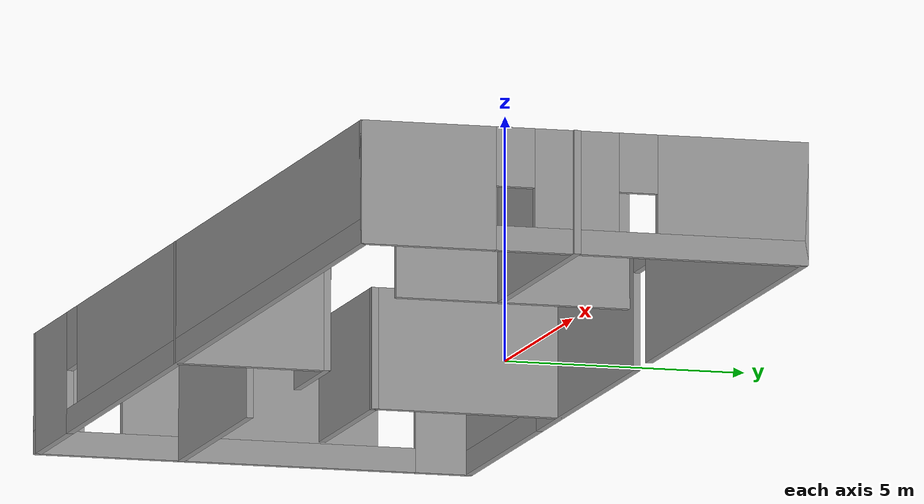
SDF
<?xml version='1.0'?>
<sdf version='1.7'>
  <model name='home_environment'>
    <pose>-438.845 135.129 0 0 -0 0</pose>
    <link name='Wall_0'>
      <collision name='Wall_0_Collision'>
        <geometry>
          <box>
            <size>15.5 0.15 2.5</size>
          </box>
        </geometry>
        <pose>0 0 1.25 0 -0 0</pose>
      </collision>
      <visual name='Wall_0_Visual'>
        <pose>0 0 1.25 0 -0 0</pose>
        <geometry>
          <box>
            <size>15.5 0.15 2.5</size>
          </box>
        </geometry>
        <material>
          <script>
            <uri>file://media/materials/scripts/gazebo.material</uri>
            <name>Gazebo/Grey</name>
          </script>
          <ambient>1 1 1 1</ambient>
        </material>
        <meta>
          <layer>0</layer>
        </meta>
      </visual>
      <pose>-443.272 139.386 0 0 -0 -2.87979</pose>
    </link>
    <link name='Wall_1'>
      <collision name='Wall_1_Collision'>
        <geometry>
          <box>
            <size>68.25 0.15 2.5</size>
          </box>
        </geometry>
        <pose>0 0 1.25 0 -0 0</pose>
      </collision>
      <visual name='Wall_1_Visual'>
        <pose>0 0 1.25 0 -0 0</pose>
        <geometry>
          <box>
            <size>68.25 0.15 2.5</size>
          </box>
        </geometry>
        <material>
          <script>
            <uri>file://media/materials/scripts/gazebo.material</uri>
            <name>Gazebo/Grey</name>
          </script>
          <ambient>1 1 1 1</ambient>
        </material>
        <meta>
          <layer>0</layer>
        </meta>
      </visual>
      <pose>-441.873 104.51 0 0 -0 -1.309</pose>
    </link>
    <link name='Wall_10'>
      <pose>438.352 -132.285 0 0 -0 3.14159</pose>
      <visual name='Wall_10_Visual_0'>
        <pose>-6.73509 0 1.25 0 -0 0</pose>
        <geometry>
          <box>
            <size>11.2798 0.15 2.5</size>
          </box>
        </geometry>
        <material>
          <script>
            <uri>file://media/materials/scripts/gazebo.material</uri>
            <name>Gazebo/Grey</name>
          </script>
          <ambient>1 1 1 1</ambient>
        </material>
        <meta>
          <layer>0</layer>
        </meta>
      </visual>
      <collision name='Wall_10_Collision_0'>
        <geometry>
          <box>
            <size>11.2798 0.15 2.5</size>
          </box>
        </geometry>
        <pose>-6.73509 0 1.25 0 -0 0</pose>
      </collision>
      <visual name='Wall_10_Visual_1'>
        <pose>3.38738 0 1.25 0 -0 0</pose>
        <geometry>
          <box>
            <size>7.16512 0.15 2.5</size>
          </box>
        </geometry>
        <material>
          <script>
            <uri>file://media/materials/scripts/gazebo.material</uri>
            <name>Gazebo/Grey</name>
          </script>
          <ambient>1 1 1 1</ambient>
        </material>
        <meta>
          <layer>0</layer>
        </meta>
      </visual>
      <collision name='Wall_10_Collision_1'>
        <geometry>
          <box>
            <size>7.16512 0.15 2.5</size>
          </box>
        </geometry>
        <pose>3.38738 0 1.25 0 -0 0</pose>
      </collision>
      <visual name='Wall_10_Visual_2'>
        <pose>9.67247 0 0.25 0 -0 0</pose>
        <geometry>
          <box>
            <size>5.40506 0.15 0.5</size>
          </box>
        </geometry>
        <material>
          <script>
            <uri>file://media/materials/scripts/gazebo.material</uri>
            <name>Gazebo/Grey</name>
          </script>
          <ambient>1 1 1 1</ambient>
        </material>
        <meta>
          <layer>0</layer>
        </meta>
      </visual>
      <collision name='Wall_10_Collision_2'>
        <geometry>
          <box>
            <size>5.40506 0.15 0.5</size>
          </box>
        </geometry>
        <pose>9.67247 0 0.25 0 -0 0</pose>
      </collision>
      <visual name='Wall_10_Visual_3'>
        <pose>10.0725 0 1.5 0 -0 0</pose>
        <geometry>
          <box>
            <size>4.60506 0.15 2</size>
          </box>
        </geometry>
        <material>
          <script>
            <uri>file://media/materials/scripts/gazebo.material</uri>
            <name>Gazebo/Grey</name>
          </script>
          <ambient>1 1 1 1</ambient>
        </material>
        <meta>
          <layer>0</layer>
        </meta>
      </visual>
      <collision name='Wall_10_Collision_3'>
        <geometry>
          <box>
            <size>4.60506 0.15 2</size>
          </box>
        </geometry>
        <pose>10.0725 0 1.5 0 -0 0</pose>
      </collision>
      <visual name='Wall_10_Visual_4'>
        <pose>7.36994 0 1.9 0 -0 0</pose>
        <geometry>
          <box>
            <size>0.8 0.15 1.2</size>
          </box>
        </geometry>
        <material>
          <script>
            <uri>file://media/materials/scripts/gazebo.material</uri>
            <name>Gazebo/Grey</name>
          </script>
          <ambient>1 1 1 1</ambient>
        </material>
        <meta>
          <layer>0</layer>
        </meta>
      </visual>
      <collision name='Wall_10_Collision_4'>
        <geometry>
          <box>
            <size>0.8 0.15 1.2</size>
          </box>
        </geometry>
        <pose>7.36994 0 1.9 0 -0 0</pose>
      </collision>
      <visual name='Wall_10_Visual_5'>
        <pose>-0.64518 0 2.25 0 -0 0</pose>
        <geometry>
          <box>
            <size>0.9 0.15 0.5</size>
          </box>
        </geometry>
        <material>
          <script>
            <uri>file://media/materials/scripts/gazebo.material</uri>
            <name>Gazebo/Grey</name>
          </script>
          <ambient>1 1 1 1</ambient>
        </material>
        <meta>
          <layer>0</layer>
        </meta>
      </visual>
      <collision name='Wall_10_Collision_5'>
        <geometry>
          <box>
            <size>0.9 0.15 0.5</size>
          </box>
        </geometry>
        <pose>-0.64518 0 2.25 0 -0 0</pose>
      </collision>
    </link>
    <link name='Wall_15'>
      <collision name='Wall_15_Collision'>
        <geometry>
          <box>
            <size>4 0.15 2.5</size>
          </box>
        </geometry>
        <pose>0 0 1.25 0 -0 0</pose>
      </collision>
      <visual name='Wall_15_Visual'>
        <pose>0 0 1.25 0 -0 0</pose>
        <geometry>
          <box>
            <size>4 0.15 2.5</size>
          </box>
        </geometry>
        <material>
          <script>
            <uri>file://media/materials/scripts/gazebo.material</uri>
            <name>Gazebo/Grey</name>
          </script>
          <ambient>1 1 1 1</ambient>
        </material>
        <meta>
          <layer>0</layer>
        </meta>
      </visual>
      <pose>432.888 -134.271 0 0 -0 -1.5708</pose>
    </link>
    <link name='Wall_16'>
      <collision name='Wall_16_Collision'>
        <geometry>
          <box>
            <size>4 0.15 2.5</size>
          </box>
        </geometry>
        <pose>0 0 1.25 0 -0 0</pose>
      </collision>
      <visual name='Wall_16_Visual'>
        <pose>0 0 1.25 0 -0 0</pose>
        <geometry>
          <box>
            <size>4 0.15 2.5</size>
          </box>
        </geometry>
        <material>
          <script>
            <uri>file://media/materials/scripts/gazebo.material</uri>
            <name>Gazebo/Grey</name>
          </script>
          <ambient>1 1 1 1</ambient>
        </material>
        <meta>
          <layer>0</layer>
        </meta>
      </visual>
      <pose>430.963 -136.196 0 0 -0 3.14159</pose>
    </link>
    <link name='Wall_18'>
      <collision name='Wall_18_Collision'>
        <geometry>
          <box>
            <size>5.75 0.15 2.5</size>
          </box>
        </geometry>
        <pose>0 0 1.25 0 -0 0</pose>
      </collision>
      <visual name='Wall_18_Visual'>
        <pose>0 0 1.25 0 -0 0</pose>
        <geometry>
          <box>
            <size>5.75 0.15 2.5</size>
          </box>
        </geometry>
        <material>
          <script>
            <uri>file://media/materials/scripts/gazebo.material</uri>
            <name>Gazebo/Grey</name>
          </script>
          <ambient>1 1 1 1</ambient>
        </material>
        <meta>
          <layer>0</layer>
        </meta>
      </visual>
      <pose>447.903 -137.004 0 0 -0 3.14159</pose>
    </link>
    <link name='Wall_19'>
      <collision name='Wall_19_Collision'>
        <geometry>
          <box>
            <size>2.75 0.15 2.5</size>
          </box>
        </geometry>
        <pose>0 0 1.25 0 -0 0</pose>
      </collision>
      <visual name='Wall_19_Visual'>
        <pose>0 0 1.25 0 -0 0</pose>
        <geometry>
          <box>
            <size>2.75 0.15 2.5</size>
          </box>
        </geometry>
        <material>
          <script>
            <uri>file://media/materials/scripts/gazebo.material</uri>
            <name>Gazebo/Grey</name>
          </script>
          <ambient>1 1 1 1</ambient>
        </material>
        <meta>
          <layer>0</layer>
        </meta>
      </visual>
      <pose>445.103 -135.704 0 0 -0 1.5708</pose>
    </link>
    <link name='Wall_21'>
      <collision name='Wall_21_Collision'>
        <geometry>
          <box>
            <size>2.25 0.15 2.5</size>
          </box>
        </geometry>
        <pose>0 0 1.25 0 -0 0</pose>
      </collision>
      <visual name='Wall_21_Visual'>
        <pose>0 0 1.25 0 -0 0</pose>
        <geometry>
          <box>
            <size>2.25 0.15 2.5</size>
          </box>
        </geometry>
        <material>
          <script>
            <uri>file://media/materials/scripts/gazebo.material</uri>
            <name>Gazebo/Grey</name>
          </script>
          <ambient>1 1 1 1</ambient>
        </material>
        <meta>
          <layer>0</layer>
        </meta>
      </visual>
      <pose>445.103 -138.054 0 0 -0 -1.5708</pose>
    </link>
    <link name='Wall_23'>
      <collision name='Wall_23_Collision'>
        <geometry>
          <box>
            <size>3.25 0.15 2.5</size>
          </box>
        </geometry>
        <pose>0 0 1.25 0 -0 0</pose>
      </collision>
      <visual name='Wall_23_Visual'>
        <pose>0 0 1.25 0 -0 0</pose>
        <geometry>
          <box>
            <size>3.25 0.15 2.5</size>
          </box>
        </geometry>
        <material>
          <script>
            <uri>file://media/materials/scripts/gazebo.material</uri>
            <name>Gazebo/Grey</name>
          </script>
          <ambient>1 1 1 1</ambient>
        </material>
        <meta>
          <layer>0</layer>
        </meta>
      </visual>
      <pose>436.79 -139.839 0 0 -0 1.5708</pose>
    </link>
    <link name='Wall_24'>
      <collision name='Wall_24_Collision'>
        <geometry>
          <box>
            <size>2.25 0.15 2.5</size>
          </box>
        </geometry>
        <pose>0 0 1.25 0 -0 0</pose>
      </collision>
      <visual name='Wall_24_Visual'>
        <pose>0 0 1.25 0 -0 0</pose>
        <geometry>
          <box>
            <size>2.25 0.15 2.5</size>
          </box>
        </geometry>
        <material>
          <script>
            <uri>file://media/materials/scripts/gazebo.material</uri>
            <name>Gazebo/Grey</name>
          </script>
          <ambient>1 1 1 1</ambient>
        </material>
        <meta>
          <layer>0</layer>
        </meta>
      </visual>
      <pose>435.74 -138.289 0 0 -0 3.14159</pose>
    </link>
    <link name='Wall_27'>
      <collision name='Wall_27_Collision'>
        <geometry>
          <box>
            <size>5.25 0.15 2.5</size>
          </box>
        </geometry>
        <pose>0 0 1.25 0 -0 0</pose>
      </collision>
      <visual name='Wall_27_Visual'>
        <pose>0 0 1.25 0 -0 0</pose>
        <geometry>
          <box>
            <size>5.25 0.15 2.5</size>
          </box>
        </geometry>
        <material>
          <script>
            <uri>file://media/materials/scripts/gazebo.material</uri>
            <name>Gazebo/Grey</name>
          </script>
          <ambient>1 1 1 1</ambient>
        </material>
        <meta>
          <layer>0</layer>
        </meta>
      </visual>
      <pose>428.675 -138.365 0 0 -0 3.14159</pose>
    </link>
    <link name='Wall_7'>
      <pose>426.052 -136.835 0 0 -0 -1.5708</pose>
      <visual name='Wall_7_Visual_0'>
        <pose>-4.01623 0 1.25 0 -0 0</pose>
        <geometry>
          <box>
            <size>1.21753 0.15 2.5</size>
          </box>
        </geometry>
        <material>
          <script>
            <uri>file://media/materials/scripts/gazebo.material</uri>
            <name>Gazebo/Grey</name>
          </script>
          <ambient>1 1 1 1</ambient>
        </material>
        <meta>
          <layer>0</layer>
        </meta>
      </visual>
      <collision name='Wall_7_Collision_0'>
        <geometry>
          <box>
            <size>1.21753 0.15 2.5</size>
          </box>
        </geometry>
        <pose>-4.01623 0 1.25 0 -0 0</pose>
      </collision>
      <visual name='Wall_7_Visual_1'>
        <pose>0.608767 0 0.25 0 -0 0</pose>
        <geometry>
          <box>
            <size>8.03247 0.15 0.5</size>
          </box>
        </geometry>
        <material>
          <script>
            <uri>file://media/materials/scripts/gazebo.material</uri>
            <name>Gazebo/Grey</name>
          </script>
          <ambient>1 1 1 1</ambient>
        </material>
        <meta>
          <layer>0</layer>
        </meta>
      </visual>
      <collision name='Wall_7_Collision_1'>
        <geometry>
          <box>
            <size>8.03247 0.15 0.5</size>
          </box>
        </geometry>
        <pose>0.608767 0 0.25 0 -0 0</pose>
      </collision>
      <visual name='Wall_7_Visual_2'>
        <pose>0.092722 0 1.5 0 -0 0</pose>
        <geometry>
          <box>
            <size>5.40038 0.15 2</size>
          </box>
        </geometry>
        <material>
          <script>
            <uri>file://media/materials/scripts/gazebo.material</uri>
            <name>Gazebo/Grey</name>
          </script>
          <ambient>1 1 1 1</ambient>
        </material>
        <meta>
          <layer>0</layer>
        </meta>
      </visual>
      <collision name='Wall_7_Collision_2'>
        <geometry>
          <box>
            <size>5.40038 0.15 2</size>
          </box>
        </geometry>
        <pose>0.092722 0 1.5 0 -0 0</pose>
      </collision>
      <visual name='Wall_7_Visual_3'>
        <pose>4.10896 0 1.5 0 -0 0</pose>
        <geometry>
          <box>
            <size>1.03209 0.15 2</size>
          </box>
        </geometry>
        <material>
          <script>
            <uri>file://media/materials/scripts/gazebo.material</uri>
            <name>Gazebo/Grey</name>
          </script>
          <ambient>1 1 1 1</ambient>
        </material>
        <meta>
          <layer>0</layer>
        </meta>
      </visual>
      <collision name='Wall_7_Collision_3'>
        <geometry>
          <box>
            <size>1.03209 0.15 2</size>
          </box>
        </geometry>
        <pose>4.10896 0 1.5 0 -0 0</pose>
      </collision>
      <visual name='Wall_7_Visual_4'>
        <pose>-3.00747 0 1.9 0 -0 0</pose>
        <geometry>
          <box>
            <size>0.8 0.15 1.2</size>
          </box>
        </geometry>
        <material>
          <script>
            <uri>file://media/materials/scripts/gazebo.material</uri>
            <name>Gazebo/Grey</name>
          </script>
          <ambient>1 1 1 1</ambient>
        </material>
        <meta>
          <layer>0</layer>
        </meta>
      </visual>
      <collision name='Wall_7_Collision_4'>
        <geometry>
          <box>
            <size>0.8 0.15 1.2</size>
          </box>
        </geometry>
        <pose>-3.00747 0 1.9 0 -0 0</pose>
      </collision>
      <visual name='Wall_7_Visual_5'>
        <pose>3.19291 0 1.9 0 -0 0</pose>
        <geometry>
          <box>
            <size>0.8 0.15 1.2</size>
          </box>
        </geometry>
        <material>
          <script>
            <uri>file://media/materials/scripts/gazebo.material</uri>
            <name>Gazebo/Grey</name>
          </script>
          <ambient>1 1 1 1</ambient>
        </material>
        <meta>
          <layer>0</layer>
        </meta>
      </visual>
      <collision name='Wall_7_Collision_5'>
        <geometry>
          <box>
            <size>0.8 0.15 1.2</size>
          </box>
        </geometry>
        <pose>3.19291 0 1.9 0 -0 0</pose>
      </collision>
    </link>
    <link name='Wall_8'>
      <pose>438.352 -141.385 0 0 -0 0</pose>
      <visual name='Wall_8_Visual_0'>
        <pose>-11.1008 0 1.25 0 -0 0</pose>
        <geometry>
          <box>
            <size>2.54835 0.15 2.5</size>
          </box>
        </geometry>
        <material>
          <script>
            <uri>file://media/materials/scripts/gazebo.material</uri>
            <name>Gazebo/Grey</name>
          </script>
          <ambient>1 1 1 1</ambient>
        </material>
        <meta>
          <layer>0</layer>
        </meta>
      </visual>
      <collision name='Wall_8_Collision_0'>
        <geometry>
          <box>
            <size>2.54835 0.15 2.5</size>
          </box>
        </geometry>
        <pose>-11.1008 0 1.25 0 -0 0</pose>
      </collision>
      <visual name='Wall_8_Visual_1'>
        <pose>1.27417 0 0.25 0 -0 0</pose>
        <geometry>
          <box>
            <size>22.2017 0.15 0.5</size>
          </box>
        </geometry>
        <material>
          <script>
            <uri>file://media/materials/scripts/gazebo.material</uri>
            <name>Gazebo/Grey</name>
          </script>
          <ambient>1 1 1 1</ambient>
        </material>
        <meta>
          <layer>0</layer>
        </meta>
      </visual>
      <collision name='Wall_8_Collision_1'>
        <geometry>
          <box>
            <size>22.2017 0.15 0.5</size>
          </box>
        </geometry>
        <pose>1.27417 0 0.25 0 -0 0</pose>
      </collision>
      <visual name='Wall_8_Visual_2'>
        <pose>1.67417 0 1.5 0 -0 0</pose>
        <geometry>
          <box>
            <size>21.4017 0.15 2</size>
          </box>
        </geometry>
        <material>
          <script>
            <uri>file://media/materials/scripts/gazebo.material</uri>
            <name>Gazebo/Grey</name>
          </script>
          <ambient>1 1 1 1</ambient>
        </material>
        <meta>
          <layer>0</layer>
        </meta>
      </visual>
      <collision name='Wall_8_Collision_2'>
        <geometry>
          <box>
            <size>21.4017 0.15 2</size>
          </box>
        </geometry>
        <pose>1.67417 0 1.5 0 -0 0</pose>
      </collision>
      <visual name='Wall_8_Visual_3'>
        <pose>-9.42665 0 1.9 0 -0 0</pose>
        <geometry>
          <box>
            <size>0.8 0.15 1.2</size>
          </box>
        </geometry>
        <material>
          <script>
            <uri>file://media/materials/scripts/gazebo.material</uri>
            <name>Gazebo/Grey</name>
          </script>
          <ambient>1 1 1 1</ambient>
        </material>
        <meta>
          <layer>0</layer>
        </meta>
      </visual>
      <collision name='Wall_8_Collision_3'>
        <geometry>
          <box>
            <size>0.8 0.15 1.2</size>
          </box>
        </geometry>
        <pose>-9.42665 0 1.9 0 -0 0</pose>
      </collision>
    </link>
    <link name='Wall_9'>
      <pose>450.652 -136.835 0 0 -0 1.5708</pose>
      <visual name='Wall_9_Visual_0'>
        <pose>-3.23183 0 1.25 0 -0 0</pose>
        <geometry>
          <box>
            <size>2.78634 0.15 2.5</size>
          </box>
        </geometry>
        <material>
          <script>
            <uri>file://media/materials/scripts/gazebo.material</uri>
            <name>Gazebo/Grey</name>
          </script>
          <ambient>1 1 1 1</ambient>
        </material>
        <meta>
          <layer>0</layer>
        </meta>
      </visual>
      <collision name='Wall_9_Collision_0'>
        <geometry>
          <box>
            <size>2.78634 0.15 2.5</size>
          </box>
        </geometry>
        <pose>-3.23183 0 1.25 0 -0 0</pose>
      </collision>
      <visual name='Wall_9_Visual_1'>
        <pose>1.39317 0 0.25 0 -0 0</pose>
        <geometry>
          <box>
            <size>6.46366 0.15 0.5</size>
          </box>
        </geometry>
        <material>
          <script>
            <uri>file://media/materials/scripts/gazebo.material</uri>
            <name>Gazebo/Grey</name>
          </script>
          <ambient>1 1 1 1</ambient>
        </material>
        <meta>
          <layer>0</layer>
        </meta>
      </visual>
      <collision name='Wall_9_Collision_1'>
        <geometry>
          <box>
            <size>6.46366 0.15 0.5</size>
          </box>
        </geometry>
        <pose>1.39317 0 0.25 0 -0 0</pose>
      </collision>
      <visual name='Wall_9_Visual_2'>
        <pose>-0.168337 0 1.5 0 -0 0</pose>
        <geometry>
          <box>
            <size>1.74064 0.15 2</size>
          </box>
        </geometry>
        <material>
          <script>
            <uri>file://media/materials/scripts/gazebo.material</uri>
            <name>Gazebo/Grey</name>
          </script>
          <ambient>1 1 1 1</ambient>
        </material>
        <meta>
          <layer>0</layer>
        </meta>
      </visual>
      <collision name='Wall_9_Collision_2'>
        <geometry>
          <box>
            <size>1.74064 0.15 2</size>
          </box>
        </geometry>
        <pose>-0.168337 0 1.5 0 -0 0</pose>
      </collision>
      <visual name='Wall_9_Visual_3'>
        <pose>3.06349 0 1.5 0 -0 0</pose>
        <geometry>
          <box>
            <size>3.12302 0.15 2</size>
          </box>
        </geometry>
        <material>
          <script>
            <uri>file://media/materials/scripts/gazebo.material</uri>
            <name>Gazebo/Grey</name>
          </script>
          <ambient>1 1 1 1</ambient>
        </material>
        <meta>
          <layer>0</layer>
        </meta>
      </visual>
      <collision name='Wall_9_Collision_3'>
        <geometry>
          <box>
            <size>3.12302 0.15 2</size>
          </box>
        </geometry>
        <pose>3.06349 0 1.5 0 -0 0</pose>
      </collision>
      <visual name='Wall_9_Visual_4'>
        <pose>-1.43866 0 1.9 0 -0 0</pose>
        <geometry>
          <box>
            <size>0.8 0.15 1.2</size>
          </box>
        </geometry>
        <material>
          <script>
            <uri>file://media/materials/scripts/gazebo.material</uri>
            <name>Gazebo/Grey</name>
          </script>
          <ambient>1 1 1 1</ambient>
        </material>
        <meta>
          <layer>0</layer>
        </meta>
      </visual>
      <collision name='Wall_9_Collision_4'>
        <geometry>
          <box>
            <size>0.8 0.15 1.2</size>
          </box>
        </geometry>
        <pose>-1.43866 0 1.9 0 -0 0</pose>
      </collision>
      <visual name='Wall_9_Visual_5'>
        <pose>1.10198 0 1.9 0 -0 0</pose>
        <geometry>
          <box>
            <size>0.8 0.15 1.2</size>
          </box>
        </geometry>
        <material>
          <script>
            <uri>file://media/materials/scripts/gazebo.material</uri>
            <name>Gazebo/Grey</name>
          </script>
          <ambient>1 1 1 1</ambient>
        </material>
        <meta>
          <layer>0</layer>
        </meta>
      </visual>
      <collision name='Wall_9_Collision_5'>
        <geometry>
          <box>
            <size>0.8 0.15 1.2</size>
          </box>
        </geometry>
        <pose>1.10198 0 1.9 0 -0 0</pose>
      </collision>
    </link>
    <static>1</static>
  </model>
</sdf>
